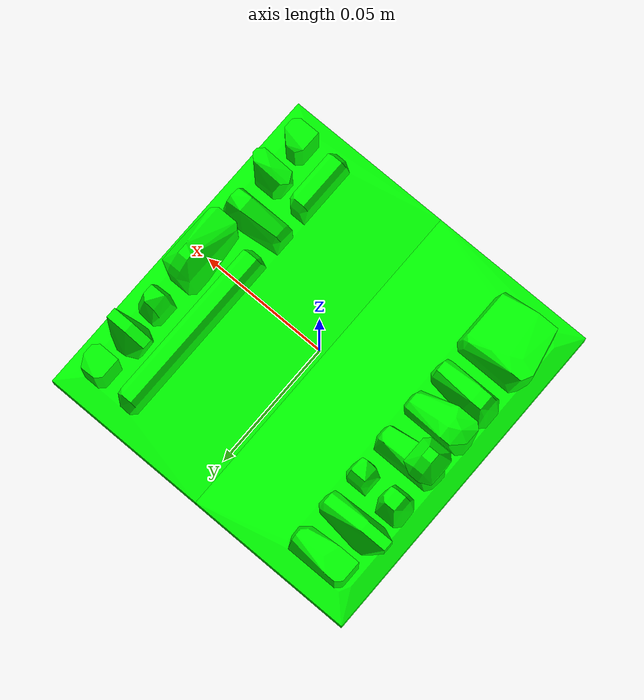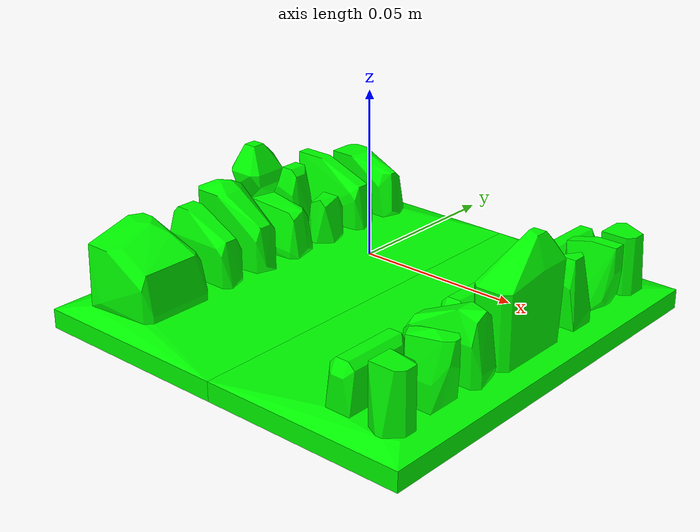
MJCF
<mujoco model="shapenetsem27">
  <asset>
    <mesh file="meshes/shapenetsem27/shapenetsem27_0.stl" name="shapenetsem27_0" scale="1 1 1"/>
    <mesh file="meshes/shapenetsem27/shapenetsem27_1.stl" name="shapenetsem27_1" scale="1 1 1"/>
    <mesh file="meshes/shapenetsem27/shapenetsem27_2.stl" name="shapenetsem27_2" scale="1 1 1"/>
    <mesh file="meshes/shapenetsem27/shapenetsem27_3.stl" name="shapenetsem27_3" scale="1 1 1"/>
    <mesh file="meshes/shapenetsem27/shapenetsem27_4.stl" name="shapenetsem27_4" scale="1 1 1"/>
    <mesh file="meshes/shapenetsem27/shapenetsem27_5.stl" name="shapenetsem27_5" scale="1 1 1"/>
    <mesh file="meshes/shapenetsem27/shapenetsem27_6.stl" name="shapenetsem27_6" scale="1 1 1"/>
    <mesh file="meshes/shapenetsem27/shapenetsem27_7.stl" name="shapenetsem27_7" scale="1 1 1"/>
    <mesh file="meshes/shapenetsem27/shapenetsem27_8.stl" name="shapenetsem27_8" scale="1 1 1"/>
    <mesh file="meshes/shapenetsem27/shapenetsem27_9.stl" name="shapenetsem27_9" scale="1 1 1"/>
    <mesh file="meshes/shapenetsem27/shapenetsem27_10.stl" name="shapenetsem27_10" scale="1 1 1"/>
    <mesh file="meshes/shapenetsem27/shapenetsem27_11.stl" name="shapenetsem27_11" scale="1 1 1"/>
    <mesh file="meshes/shapenetsem27/shapenetsem27_12.stl" name="shapenetsem27_12" scale="1 1 1"/>
    <mesh file="meshes/shapenetsem27/shapenetsem27_13.stl" name="shapenetsem27_13" scale="1 1 1"/>
    <mesh file="meshes/shapenetsem27/shapenetsem27_14.stl" name="shapenetsem27_14" scale="1 1 1"/>
    <mesh file="meshes/shapenetsem27/shapenetsem27_15.stl" name="shapenetsem27_15" scale="1 1 1"/>
    <mesh file="meshes/shapenetsem27/shapenetsem27_16.stl" name="shapenetsem27_16" scale="1 1 1"/>
    <mesh file="meshes/shapenetsem27/shapenetsem27_17.stl" name="shapenetsem27_17" scale="1 1 1"/>
    <mesh file="meshes/shapenetsem27/shapenetsem27_18.stl" name="shapenetsem27_18" scale="1 1 1"/>
    <mesh file="meshes/shapenetsem27/shapenetsem27_19.stl" name="shapenetsem27_19" scale="1 1 1"/>
  </asset>
  <worldbody>
    <body>
      <body name="collision">
        <geom pos="0 0 0" mesh="shapenetsem27_0" type="mesh" solimp="0.998 0.998 0.001" solref="0.001 1" density="100" friction="0.95 0.3 0.1" rgba="0 1 0 1" group="1" condim="4"/>
        <geom pos="0 0 0" mesh="shapenetsem27_1" type="mesh" solimp="0.998 0.998 0.001" solref="0.001 1" density="100" friction="0.95 0.3 0.1" rgba="0 1 0 1" group="1" condim="4"/>
        <geom pos="0 0 0" mesh="shapenetsem27_2" type="mesh" solimp="0.998 0.998 0.001" solref="0.001 1" density="100" friction="0.95 0.3 0.1" rgba="0 1 0 1" group="1" condim="4"/>
        <geom pos="0 0 0" mesh="shapenetsem27_3" type="mesh" solimp="0.998 0.998 0.001" solref="0.001 1" density="100" friction="0.95 0.3 0.1" rgba="0 1 0 1" group="1" condim="4"/>
        <geom pos="0 0 0" mesh="shapenetsem27_4" type="mesh" solimp="0.998 0.998 0.001" solref="0.001 1" density="100" friction="0.95 0.3 0.1" rgba="0 1 0 1" group="1" condim="4"/>
        <geom pos="0 0 0" mesh="shapenetsem27_5" type="mesh" solimp="0.998 0.998 0.001" solref="0.001 1" density="100" friction="0.95 0.3 0.1" rgba="0 1 0 1" group="1" condim="4"/>
        <geom pos="0 0 0" mesh="shapenetsem27_6" type="mesh" solimp="0.998 0.998 0.001" solref="0.001 1" density="100" friction="0.95 0.3 0.1" rgba="0 1 0 1" group="1" condim="4"/>
        <geom pos="0 0 0" mesh="shapenetsem27_7" type="mesh" solimp="0.998 0.998 0.001" solref="0.001 1" density="100" friction="0.95 0.3 0.1" rgba="0 1 0 1" group="1" condim="4"/>
        <geom pos="0 0 0" mesh="shapenetsem27_8" type="mesh" solimp="0.998 0.998 0.001" solref="0.001 1" density="100" friction="0.95 0.3 0.1" rgba="0 1 0 1" group="1" condim="4"/>
        <geom pos="0 0 0" mesh="shapenetsem27_9" type="mesh" solimp="0.998 0.998 0.001" solref="0.001 1" density="100" friction="0.95 0.3 0.1" rgba="0 1 0 1" group="1" condim="4"/>
        <geom pos="0 0 0" mesh="shapenetsem27_10" type="mesh" solimp="0.998 0.998 0.001" solref="0.001 1" density="100" friction="0.95 0.3 0.1" rgba="0 1 0 1" group="1" condim="4"/>
        <geom pos="0 0 0" mesh="shapenetsem27_11" type="mesh" solimp="0.998 0.998 0.001" solref="0.001 1" density="100" friction="0.95 0.3 0.1" rgba="0 1 0 1" group="1" condim="4"/>
        <geom pos="0 0 0" mesh="shapenetsem27_12" type="mesh" solimp="0.998 0.998 0.001" solref="0.001 1" density="100" friction="0.95 0.3 0.1" rgba="0 1 0 1" group="1" condim="4"/>
        <geom pos="0 0 0" mesh="shapenetsem27_13" type="mesh" solimp="0.998 0.998 0.001" solref="0.001 1" density="100" friction="0.95 0.3 0.1" rgba="0 1 0 1" group="1" condim="4"/>
        <geom pos="0 0 0" mesh="shapenetsem27_14" type="mesh" solimp="0.998 0.998 0.001" solref="0.001 1" density="100" friction="0.95 0.3 0.1" rgba="0 1 0 1" group="1" condim="4"/>
        <geom pos="0 0 0" mesh="shapenetsem27_15" type="mesh" solimp="0.998 0.998 0.001" solref="0.001 1" density="100" friction="0.95 0.3 0.1" rgba="0 1 0 1" group="1" condim="4"/>
        <geom pos="0 0 0" mesh="shapenetsem27_16" type="mesh" solimp="0.998 0.998 0.001" solref="0.001 1" density="100" friction="0.95 0.3 0.1" rgba="0 1 0 1" group="1" condim="4"/>
        <geom pos="0 0 0" mesh="shapenetsem27_17" type="mesh" solimp="0.998 0.998 0.001" solref="0.001 1" density="100" friction="0.95 0.3 0.1" rgba="0 1 0 1" group="1" condim="4"/>
        <geom pos="0 0 0" mesh="shapenetsem27_18" type="mesh" solimp="0.998 0.998 0.001" solref="0.001 1" density="100" friction="0.95 0.3 0.1" rgba="0 1 0 1" group="1" condim="4"/>
        <geom pos="0 0 0" mesh="shapenetsem27_19" type="mesh" solimp="0.998 0.998 0.001" solref="0.001 1" density="100" friction="0.95 0.3 0.1" rgba="0 1 0 1" group="1" condim="4"/>
      </body>
      <body name="visual">
        <geom pos="0 0 0" mesh="shapenetsem27_0" type="mesh" rgba="0 1 0 1" conaffinity="0" contype="0" group="0" mass="0.0001"/>
        <geom pos="0 0 0" mesh="shapenetsem27_1" type="mesh" rgba="0 1 0 1" conaffinity="0" contype="0" group="0" mass="0.0001"/>
        <geom pos="0 0 0" mesh="shapenetsem27_2" type="mesh" rgba="0 1 0 1" conaffinity="0" contype="0" group="0" mass="0.0001"/>
        <geom pos="0 0 0" mesh="shapenetsem27_3" type="mesh" rgba="0 1 0 1" conaffinity="0" contype="0" group="0" mass="0.0001"/>
        <geom pos="0 0 0" mesh="shapenetsem27_4" type="mesh" rgba="0 1 0 1" conaffinity="0" contype="0" group="0" mass="0.0001"/>
        <geom pos="0 0 0" mesh="shapenetsem27_5" type="mesh" rgba="0 1 0 1" conaffinity="0" contype="0" group="0" mass="0.0001"/>
        <geom pos="0 0 0" mesh="shapenetsem27_6" type="mesh" rgba="0 1 0 1" conaffinity="0" contype="0" group="0" mass="0.0001"/>
        <geom pos="0 0 0" mesh="shapenetsem27_7" type="mesh" rgba="0 1 0 1" conaffinity="0" contype="0" group="0" mass="0.0001"/>
        <geom pos="0 0 0" mesh="shapenetsem27_8" type="mesh" rgba="0 1 0 1" conaffinity="0" contype="0" group="0" mass="0.0001"/>
        <geom pos="0 0 0" mesh="shapenetsem27_9" type="mesh" rgba="0 1 0 1" conaffinity="0" contype="0" group="0" mass="0.0001"/>
        <geom pos="0 0 0" mesh="shapenetsem27_10" type="mesh" rgba="0 1 0 1" conaffinity="0" contype="0" group="0" mass="0.0001"/>
        <geom pos="0 0 0" mesh="shapenetsem27_11" type="mesh" rgba="0 1 0 1" conaffinity="0" contype="0" group="0" mass="0.0001"/>
        <geom pos="0 0 0" mesh="shapenetsem27_12" type="mesh" rgba="0 1 0 1" conaffinity="0" contype="0" group="0" mass="0.0001"/>
        <geom pos="0 0 0" mesh="shapenetsem27_13" type="mesh" rgba="0 1 0 1" conaffinity="0" contype="0" group="0" mass="0.0001"/>
        <geom pos="0 0 0" mesh="shapenetsem27_14" type="mesh" rgba="0 1 0 1" conaffinity="0" contype="0" group="0" mass="0.0001"/>
        <geom pos="0 0 0" mesh="shapenetsem27_15" type="mesh" rgba="0 1 0 1" conaffinity="0" contype="0" group="0" mass="0.0001"/>
        <geom pos="0 0 0" mesh="shapenetsem27_16" type="mesh" rgba="0 1 0 1" conaffinity="0" contype="0" group="0" mass="0.0001"/>
        <geom pos="0 0 0" mesh="shapenetsem27_17" type="mesh" rgba="0 1 0 1" conaffinity="0" contype="0" group="0" mass="0.0001"/>
        <geom pos="0 0 0" mesh="shapenetsem27_18" type="mesh" rgba="0 1 0 1" conaffinity="0" contype="0" group="0" mass="0.0001"/>
        <geom pos="0 0 0" mesh="shapenetsem27_19" type="mesh" rgba="0 1 0 1" conaffinity="0" contype="0" group="0" mass="0.0001"/>
      </body>
      <site rgba="0 0 0 0" size="0.005" pos="0 0 -0.06" name="bottom_site"/>
      <site rgba="0 0 0 0" size="0.005" pos="0 0 0.04" name="top_site"/>
      <site rgba="0 0 0 0" size="0.005" pos="0.025 0.025 0" name="horizontal_radius_site"/>
    </body>
  </worldbody>
</mujoco>
